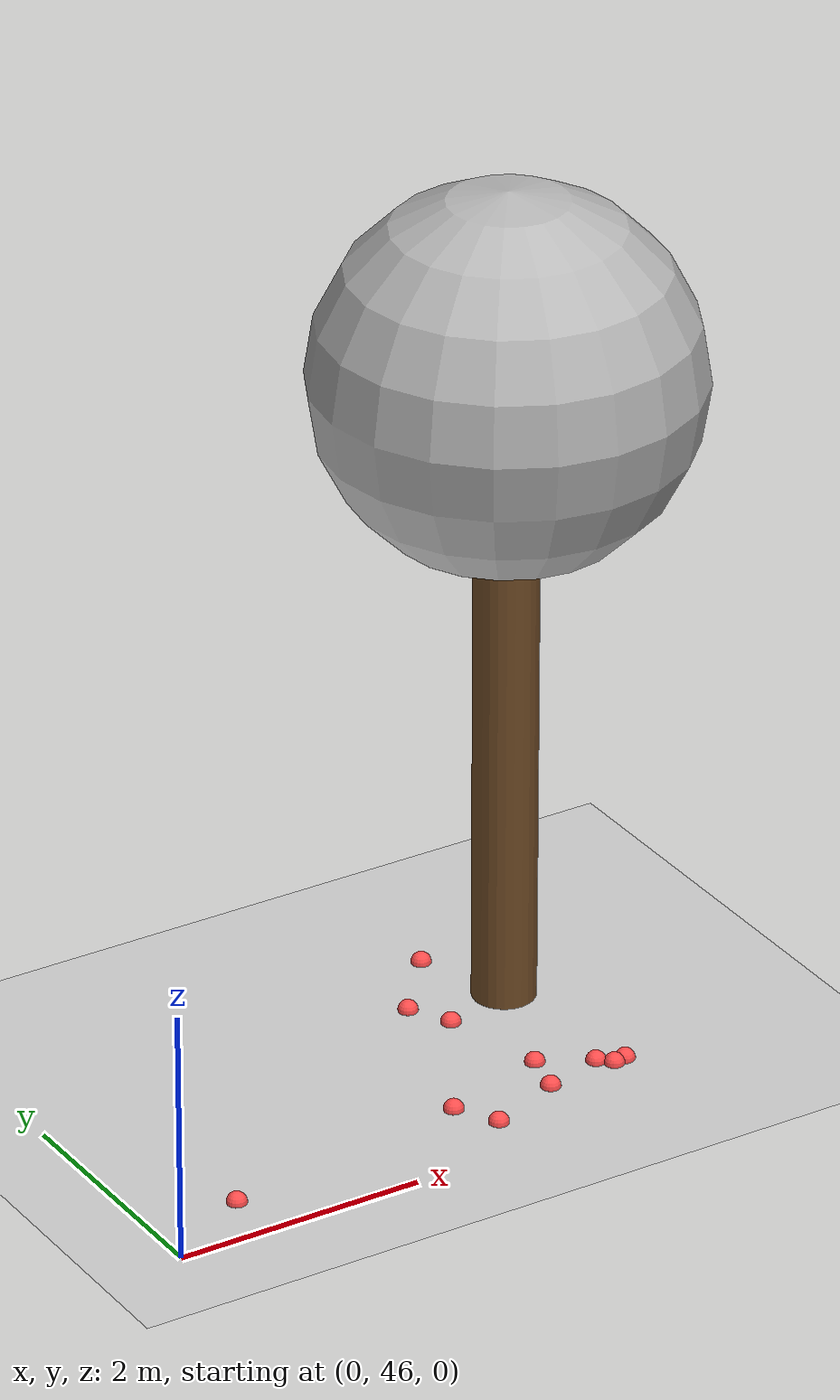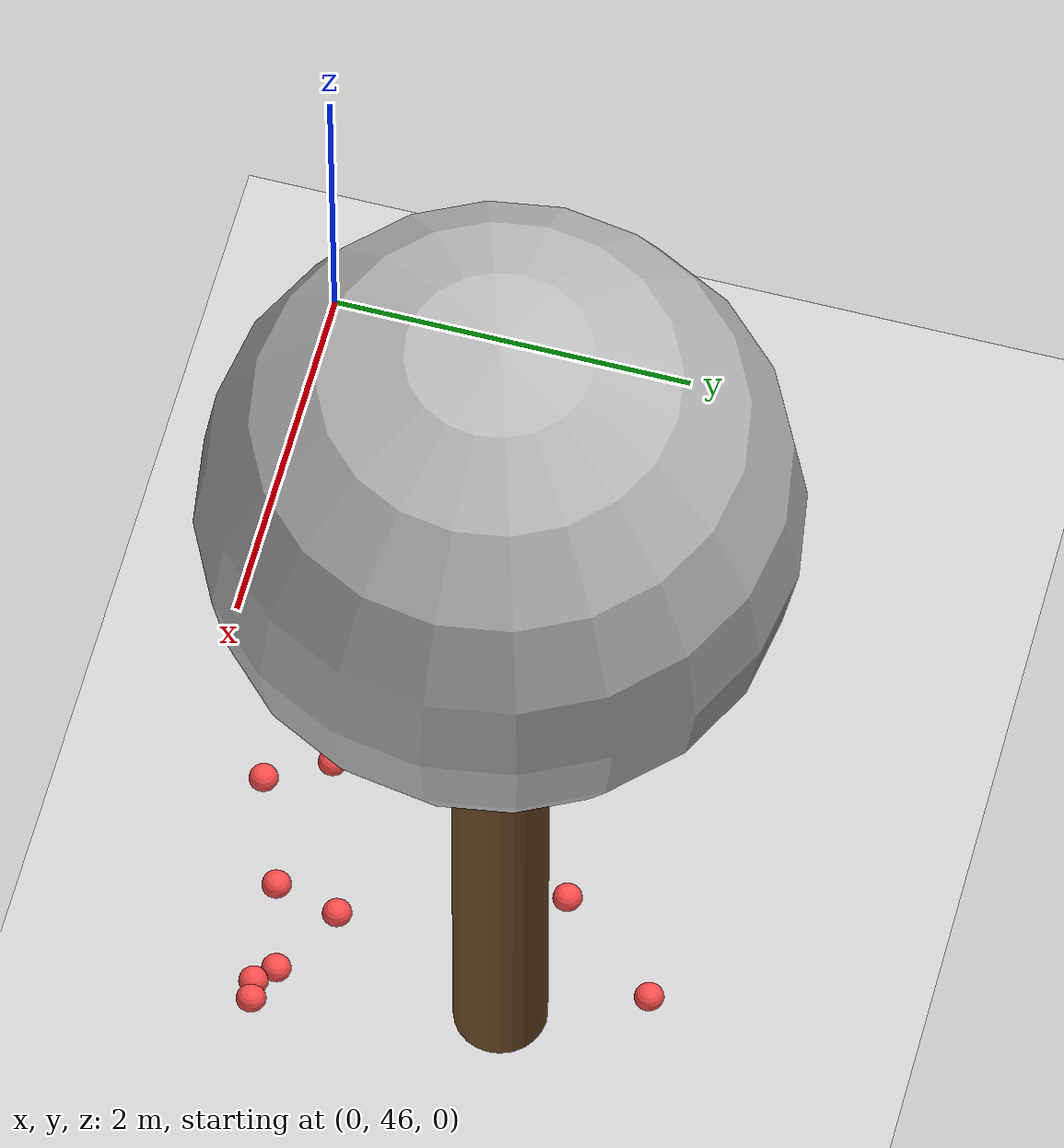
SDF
<sdf version="1.7">
 <world name="default">
  <model name="ground_plane">
   <static>1</static>
   <link name="link">
    <collision name="collision">
     <geometry><plane><normal>0 0 1</normal><size>100 100</size></plane></geometry>
     <surface>
      <contact><collide_bitmask>65535</collide_bitmask></contact>
      <friction><ode><mu>100</mu><mu2>50</mu2></ode></friction>
     </surface>
    </collision>
    <visual name="visual">
     <cast_shadows>0</cast_shadows>
     <geometry><plane><normal>0 0 1</normal><size>100 100</size></plane></geometry>
     <material>
      <script><uri>file://media/materials/scripts/gazebo.material</uri><name>Gazebo/Grey</name></script>
     </material>
    </visual>
   </link>
  </model>
  <model name="tree_simple_1">
   <static>1</static>
   <link name="link">
    <pose>0 0 0.1 0 -0 0</pose>
    <inertial>
     <mass>666</mass>
     <inertia>
      <ixx>0.0861167</ixx>
      <ixy>0</ixy>
      <ixz>0</ixz>
      <iyy>0.0861167</iyy>
      <iyz>0</iyz>
      <izz>0.0861167</izz>
     </inertia>
    </inertial>
    <collision name="collision_trunk">
     <pose>0 0 2 0 -0 0</pose>
     <geometry><cylinder><radius>0.25</radius><length>4</length></cylinder></geometry>
     <surface>
      <contact>
       <poissons_ratio>0.347</poissons_ratio>
       <elastic_modulus>8.8e+09</elastic_modulus>
       <ode><kp>100000</kp><kd>100</kd><max_vel>100</max_vel><min_depth>0.001</min_depth></ode>
      </contact>
      <friction>
       <torsional>
        <coefficient>1</coefficient>
        <use_patch_radius>0</use_patch_radius>
        <surface_radius>0.01</surface_radius>
       </torsional>
      </friction>
     </surface>
    </collision>
    <collision name="collision_treetop">
     <pose>0 0 5.2 0 -0 0</pose>
     <geometry><sphere><radius>1.5</radius></sphere></geometry>
     <surface>
      <contact>
       <poissons_ratio>0.347</poissons_ratio>
       <elastic_modulus>8.8e+09</elastic_modulus>
       <ode><kp>100000</kp><kd>100</kd><max_vel>100</max_vel><min_depth>0.001</min_depth></ode>
      </contact>
      <friction>
       <torsional>
        <coefficient>1</coefficient>
        <use_patch_radius>0</use_patch_radius>
        <surface_radius>0.01</surface_radius>
       </torsional>
      </friction>
     </surface>
    </collision>
    <visual name="trunk">
     <pose>0 0 2 0 -0 0</pose>
     <geometry><cylinder><radius>0.25</radius><length>4</length></cylinder></geometry>
     <material>
      <script>
       <uri>model://tree_simple/scripts</uri>
       <uri>model://tree_simple/materials/textures</uri>
       <name>TreeSimple/Trunk</name>
      </script>
     </material>
    </visual>
    <visual name="treetop">
     <pose>0 0 5.2 0 -0 0</pose>
     <geometry><sphere><radius>1.5</radius></sphere></geometry>
     <material>
      <script>
       <uri>model://tree_simple/scripts</uri>
       <uri>model://tree_simple/materials/textures</uri>
       <name>TreeSimple/Treetop</name>
      </script>
     </material>
    </visual>
   </link>
   <pose>4 48 -0.1 0 -0 0</pose>
  </model>
  <model name="seed_red_0">
   <link name="link">
    <inertial>
     <mass>1</mass>
     <inertia><ixx>0.1</ixx><ixy>0</ixy><ixz>0</ixz><iyy>0.1</iyy><iyz>0</iyz><izz>0.1</izz></inertia>
    </inertial>
    <visual name="visual">
     <geometry><sphere><radius>0.08</radius></sphere></geometry>
     <material>
      <script><name>Gazebo/Grey</name><uri>file://media/materials/scripts/gazebo.material</uri></script>
      <shader type="pixel"><normal_map>__default__</normal_map></shader>
      <ambient>1 0.3 0.3 1</ambient>
      <diffuse>0.7 0.7 0.7 1</diffuse>
      <specular>0.01 0.01 0.01 1</specular>
      <emissive>0 0 0 1</emissive>
     </material>
    </visual>
    <collision name="collision">
     <geometry><sphere><radius>0.0005</radius></sphere></geometry>
     <surface>
      <friction>
       <ode><mu>1</mu><mu2>1</mu2><fdir1>0 0 0</fdir1><slip1>0</slip1><slip2>0</slip2></ode>
       <torsional>
        <coefficient>1</coefficient>
        <patch_radius>0</patch_radius>
        <surface_radius>0</surface_radius>
        <use_patch_radius>1</use_patch_radius>
        <ode><slip>0</slip></ode>
       </torsional>
      </friction>
      <bounce><restitution_coefficient>0</restitution_coefficient><threshold>1e+06</threshold></bounce>
      <contact>
       <collide_without_contact>0</collide_without_contact>
       <collide_without_contact_bitmask>1</collide_without_contact_bitmask>
       <collide_bitmask>1</collide_bitmask>
       <ode>
        <soft_cfm>0</soft_cfm>
        <soft_erp>0.2</soft_erp>
        <kp>1e+13</kp>
        <kd>1</kd>
        <max_vel>0.01</max_vel>
        <min_depth>0</min_depth>
       </ode>
       <bullet>
        <split_impulse>1</split_impulse>
        <split_impulse_penetration_threshold>-0.01</split_impulse_penetration_threshold>
        <soft_cfm>0</soft_cfm>
        <soft_erp>0.2</soft_erp>
        <kp>1e+13</kp>
        <kd>1</kd>
       </bullet>
      </contact>
     </surface>
    </collision>
   </link>
   <static>0</static>
   <pose>3.71634 48.735 0.0005 0 -0 0</pose>
  </model>
  <model name="seed_red_1">
   <link name="link">
    <inertial>
     <mass>1</mass>
     <inertia><ixx>0.1</ixx><ixy>0</ixy><ixz>0</ixz><iyy>0.1</iyy><iyz>0</iyz><izz>0.1</izz></inertia>
    </inertial>
    <visual name="visual">
     <geometry><sphere><radius>0.08</radius></sphere></geometry>
     <material>
      <script><name>Gazebo/Grey</name><uri>file://media/materials/scripts/gazebo.material</uri></script>
      <shader type="pixel"><normal_map>__default__</normal_map></shader>
      <ambient>1 0.3 0.3 1</ambient>
      <diffuse>0.7 0.7 0.7 1</diffuse>
      <specular>0.01 0.01 0.01 1</specular>
      <emissive>0 0 0 1</emissive>
     </material>
    </visual>
    <collision name="collision">
     <geometry><sphere><radius>0.0005</radius></sphere></geometry>
     <surface>
      <friction>
       <ode><mu>1</mu><mu2>1</mu2><fdir1>0 0 0</fdir1><slip1>0</slip1><slip2>0</slip2></ode>
       <torsional>
        <coefficient>1</coefficient>
        <patch_radius>0</patch_radius>
        <surface_radius>0</surface_radius>
        <use_patch_radius>1</use_patch_radius>
        <ode><slip>0</slip></ode>
       </torsional>
      </friction>
      <bounce><restitution_coefficient>0</restitution_coefficient><threshold>1e+06</threshold></bounce>
      <contact>
       <collide_without_contact>0</collide_without_contact>
       <collide_without_contact_bitmask>1</collide_without_contact_bitmask>
       <collide_bitmask>1</collide_bitmask>
       <ode>
        <soft_cfm>0</soft_cfm>
        <soft_erp>0.2</soft_erp>
        <kp>1e+13</kp>
        <kd>1</kd>
        <max_vel>0.01</max_vel>
        <min_depth>0</min_depth>
       </ode>
       <bullet>
        <split_impulse>1</split_impulse>
        <split_impulse_penetration_threshold>-0.01</split_impulse_penetration_threshold>
        <soft_cfm>0</soft_cfm>
        <soft_erp>0.2</soft_erp>
        <kp>1e+13</kp>
        <kd>1</kd>
       </bullet>
      </contact>
     </surface>
    </collision>
   </link>
   <static>0</static>
   <pose>4.0556 46.7916 0.0005 0 -0 0</pose>
  </model>
  <model name="seed_red_2">
   <link name="link">
    <inertial>
     <mass>1</mass>
     <inertia><ixx>0.1</ixx><ixy>0</ixy><ixz>0</ixz><iyy>0.1</iyy><iyz>0</iyz><izz>0.1</izz></inertia>
    </inertial>
    <visual name="visual">
     <geometry><sphere><radius>0.08</radius></sphere></geometry>
     <material>
      <script><name>Gazebo/Grey</name><uri>file://media/materials/scripts/gazebo.material</uri></script>
      <shader type="pixel"><normal_map>__default__</normal_map></shader>
      <ambient>1 0.3 0.3 1</ambient>
      <diffuse>0.7 0.7 0.7 1</diffuse>
      <specular>0.01 0.01 0.01 1</specular>
      <emissive>0 0 0 1</emissive>
     </material>
    </visual>
    <collision name="collision">
     <geometry><sphere><radius>0.0005</radius></sphere></geometry>
     <surface>
      <friction>
       <ode><mu>1</mu><mu2>1</mu2><fdir1>0 0 0</fdir1><slip1>0</slip1><slip2>0</slip2></ode>
       <torsional>
        <coefficient>1</coefficient>
        <patch_radius>0</patch_radius>
        <surface_radius>0</surface_radius>
        <use_patch_radius>1</use_patch_radius>
        <ode><slip>0</slip></ode>
       </torsional>
      </friction>
      <bounce><restitution_coefficient>0</restitution_coefficient><threshold>1e+06</threshold></bounce>
      <contact>
       <collide_without_contact>0</collide_without_contact>
       <collide_without_contact_bitmask>1</collide_without_contact_bitmask>
       <collide_bitmask>1</collide_bitmask>
       <ode>
        <soft_cfm>0</soft_cfm>
        <soft_erp>0.2</soft_erp>
        <kp>1e+13</kp>
        <kd>1</kd>
        <max_vel>0.01</max_vel>
        <min_depth>0</min_depth>
       </ode>
       <bullet>
        <split_impulse>1</split_impulse>
        <split_impulse_penetration_threshold>-0.01</split_impulse_penetration_threshold>
        <soft_cfm>0</soft_cfm>
        <soft_erp>0.2</soft_erp>
        <kp>1e+13</kp>
        <kd>1</kd>
       </bullet>
      </contact>
     </surface>
    </collision>
   </link>
   <static>0</static>
   <pose>4.2634 46.7119 0.0005 0 -0 0</pose>
  </model>
  <model name="seed_red_4">
   <link name="link">
    <inertial>
     <mass>1</mass>
     <inertia><ixx>0.1</ixx><ixy>0</ixy><ixz>0</ixz><iyy>0.1</iyy><iyz>0</iyz><izz>0.1</izz></inertia>
    </inertial>
    <visual name="visual">
     <geometry><sphere><radius>0.08</radius></sphere></geometry>
     <material>
      <script><name>Gazebo/Grey</name><uri>file://media/materials/scripts/gazebo.material</uri></script>
      <shader type="pixel"><normal_map>__default__</normal_map></shader>
      <ambient>1 0.3 0.3 1</ambient>
      <diffuse>0.7 0.7 0.7 1</diffuse>
      <specular>0.01 0.01 0.01 1</specular>
      <emissive>0 0 0 1</emissive>
     </material>
    </visual>
    <collision name="collision">
     <geometry><sphere><radius>0.0005</radius></sphere></geometry>
     <surface>
      <friction>
       <ode><mu>1</mu><mu2>1</mu2><fdir1>0 0 0</fdir1><slip1>0</slip1><slip2>0</slip2></ode>
       <torsional>
        <coefficient>1</coefficient>
        <patch_radius>0</patch_radius>
        <surface_radius>0</surface_radius>
        <use_patch_radius>1</use_patch_radius>
        <ode><slip>0</slip></ode>
       </torsional>
      </friction>
      <bounce><restitution_coefficient>0</restitution_coefficient><threshold>1e+06</threshold></bounce>
      <contact>
       <collide_without_contact>0</collide_without_contact>
       <collide_without_contact_bitmask>1</collide_without_contact_bitmask>
       <collide_bitmask>1</collide_bitmask>
       <ode>
        <soft_cfm>0</soft_cfm>
        <soft_erp>0.2</soft_erp>
        <kp>1e+13</kp>
        <kd>1</kd>
        <max_vel>0.01</max_vel>
        <min_depth>0</min_depth>
       </ode>
       <bullet>
        <split_impulse>1</split_impulse>
        <split_impulse_penetration_threshold>-0.01</split_impulse_penetration_threshold>
        <soft_cfm>0</soft_cfm>
        <soft_erp>0.2</soft_erp>
        <kp>1e+13</kp>
        <kd>1</kd>
       </bullet>
      </contact>
     </surface>
    </collision>
   </link>
   <static>0</static>
   <pose>3.25101 48.168 0.0005 0 -0 0</pose>
  </model>
  <model name="seed_red_5">
   <link name="link">
    <inertial>
     <mass>1</mass>
     <inertia><ixx>0.1</ixx><ixy>0</ixy><ixz>0</ixz><iyy>0.1</iyy><iyz>0</iyz><izz>0.1</izz></inertia>
    </inertial>
    <visual name="visual">
     <geometry><sphere><radius>0.08</radius></sphere></geometry>
     <material>
      <script><name>Gazebo/Grey</name><uri>file://media/materials/scripts/gazebo.material</uri></script>
      <shader type="pixel"><normal_map>__default__</normal_map></shader>
      <ambient>1 0.3 0.3 1</ambient>
      <diffuse>0.7 0.7 0.7 1</diffuse>
      <specular>0.01 0.01 0.01 1</specular>
      <emissive>0 0 0 1</emissive>
     </material>
    </visual>
    <collision name="collision">
     <geometry><sphere><radius>0.0005</radius></sphere></geometry>
     <surface>
      <friction>
       <ode><mu>1</mu><mu2>1</mu2><fdir1>0 0 0</fdir1><slip1>0</slip1><slip2>0</slip2></ode>
       <torsional>
        <coefficient>1</coefficient>
        <patch_radius>0</patch_radius>
        <surface_radius>0</surface_radius>
        <use_patch_radius>1</use_patch_radius>
        <ode><slip>0</slip></ode>
       </torsional>
      </friction>
      <bounce><restitution_coefficient>0</restitution_coefficient><threshold>1e+06</threshold></bounce>
      <contact>
       <collide_without_contact>0</collide_without_contact>
       <collide_without_contact_bitmask>1</collide_without_contact_bitmask>
       <collide_bitmask>1</collide_bitmask>
       <ode>
        <soft_cfm>0</soft_cfm>
        <soft_erp>0.2</soft_erp>
        <kp>1e+13</kp>
        <kd>1</kd>
        <max_vel>0.01</max_vel>
        <min_depth>0</min_depth>
       </ode>
       <bullet>
        <split_impulse>1</split_impulse>
        <split_impulse_penetration_threshold>-0.01</split_impulse_penetration_threshold>
        <soft_cfm>0</soft_cfm>
        <soft_erp>0.2</soft_erp>
        <kp>1e+13</kp>
        <kd>1</kd>
       </bullet>
      </contact>
     </surface>
    </collision>
   </link>
   <static>0</static>
   <pose>4.15861 46.6957 0.0005 0 -0 0</pose>
  </model>
  <model name="seed_red_6">
   <link name="link">
    <inertial>
     <mass>1</mass>
     <inertia><ixx>0.1</ixx><ixy>0</ixy><ixz>0</ixz><iyy>0.1</iyy><iyz>0</iyz><izz>0.1</izz></inertia>
    </inertial>
    <visual name="visual">
     <geometry><sphere><radius>0.08</radius></sphere></geometry>
     <material>
      <script><name>Gazebo/Grey</name><uri>file://media/materials/scripts/gazebo.material</uri></script>
      <shader type="pixel"><normal_map>__default__</normal_map></shader>
      <ambient>1 0.3 0.3 1</ambient>
      <diffuse>0.7 0.7 0.7 1</diffuse>
      <specular>0.01 0.01 0.01 1</specular>
      <emissive>0 0 0 1</emissive>
     </material>
    </visual>
    <collision name="collision">
     <geometry><sphere><radius>0.0005</radius></sphere></geometry>
     <surface>
      <friction>
       <ode><mu>1</mu><mu2>1</mu2><fdir1>0 0 0</fdir1><slip1>0</slip1><slip2>0</slip2></ode>
       <torsional>
        <coefficient>1</coefficient>
        <patch_radius>0</patch_radius>
        <surface_radius>0</surface_radius>
        <use_patch_radius>1</use_patch_radius>
        <ode><slip>0</slip></ode>
       </torsional>
      </friction>
      <bounce><restitution_coefficient>0</restitution_coefficient><threshold>1e+06</threshold></bounce>
      <contact>
       <collide_without_contact>0</collide_without_contact>
       <collide_without_contact_bitmask>1</collide_without_contact_bitmask>
       <collide_bitmask>1</collide_bitmask>
       <ode>
        <soft_cfm>0</soft_cfm>
        <soft_erp>0.2</soft_erp>
        <kp>1e+13</kp>
        <kd>1</kd>
        <max_vel>0.01</max_vel>
        <min_depth>0</min_depth>
       </ode>
       <bullet>
        <split_impulse>1</split_impulse>
        <split_impulse_penetration_threshold>-0.01</split_impulse_penetration_threshold>
        <soft_cfm>0</soft_cfm>
        <soft_erp>0.2</soft_erp>
        <kp>1e+13</kp>
        <kd>1</kd>
       </bullet>
      </contact>
     </surface>
    </collision>
   </link>
   <static>0</static>
   <pose>3.43134 47.8427 0.0005 0 -0 0</pose>
  </model>
  <model name="seed_red_12">
   <link name="link">
    <inertial>
     <mass>1</mass>
     <inertia><ixx>0.1</ixx><ixy>0</ixy><ixz>0</ixz><iyy>0.1</iyy><iyz>0</iyz><izz>0.1</izz></inertia>
    </inertial>
    <visual name="visual">
     <geometry><sphere><radius>0.08</radius></sphere></geometry>
     <material>
      <script><name>Gazebo/Grey</name><uri>file://media/materials/scripts/gazebo.material</uri></script>
      <shader type="pixel"><normal_map>__default__</normal_map></shader>
      <ambient>1 0.3 0.3 1</ambient>
      <diffuse>0.7 0.7 0.7 1</diffuse>
      <specular>0.01 0.01 0.01 1</specular>
      <emissive>0 0 0 1</emissive>
     </material>
    </visual>
    <collision name="collision">
     <geometry><sphere><radius>0.0005</radius></sphere></geometry>
     <surface>
      <friction>
       <ode><mu>1</mu><mu2>1</mu2><fdir1>0 0 0</fdir1><slip1>0</slip1><slip2>0</slip2></ode>
       <torsional>
        <coefficient>1</coefficient>
        <patch_radius>0</patch_radius>
        <surface_radius>0</surface_radius>
        <use_patch_radius>1</use_patch_radius>
        <ode><slip>0</slip></ode>
       </torsional>
      </friction>
      <bounce><restitution_coefficient>0</restitution_coefficient><threshold>1e+06</threshold></bounce>
      <contact>
       <collide_without_contact>0</collide_without_contact>
       <collide_without_contact_bitmask>1</collide_without_contact_bitmask>
       <collide_bitmask>1</collide_bitmask>
       <ode>
        <soft_cfm>0</soft_cfm>
        <soft_erp>0.2</soft_erp>
        <kp>1e+13</kp>
        <kd>1</kd>
        <max_vel>0.01</max_vel>
        <min_depth>0</min_depth>
       </ode>
       <bullet>
        <split_impulse>1</split_impulse>
        <split_impulse_penetration_threshold>-0.01</split_impulse_penetration_threshold>
        <soft_cfm>0</soft_cfm>
        <soft_erp>0.2</soft_erp>
        <kp>1e+13</kp>
        <kd>1</kd>
       </bullet>
      </contact>
     </surface>
    </collision>
   </link>
   <static>0</static>
   <pose>0.738183 46.4622 0.0005 0 -0 0</pose>
  </model>
  <model name="seed_red_19">
   <link name="link">
    <inertial>
     <mass>1</mass>
     <inertia><ixx>0.1</ixx><ixy>0</ixy><ixz>0</ixz><iyy>0.1</iyy><iyz>0</iyz><izz>0.1</izz></inertia>
    </inertial>
    <visual name="visual">
     <geometry><sphere><radius>0.08</radius></sphere></geometry>
     <material>
      <script><name>Gazebo/Grey</name><uri>file://media/materials/scripts/gazebo.material</uri></script>
      <shader type="pixel"><normal_map>__default__</normal_map></shader>
      <ambient>1 0.3 0.3 1</ambient>
      <diffuse>0.7 0.7 0.7 1</diffuse>
      <specular>0.01 0.01 0.01 1</specular>
      <emissive>0 0 0 1</emissive>
     </material>
    </visual>
    <collision name="collision">
     <geometry><sphere><radius>0.0005</radius></sphere></geometry>
     <surface>
      <friction>
       <ode><mu>1</mu><mu2>1</mu2><fdir1>0 0 0</fdir1><slip1>0</slip1><slip2>0</slip2></ode>
       <torsional>
        <coefficient>1</coefficient>
        <patch_radius>0</patch_radius>
        <surface_radius>0</surface_radius>
        <use_patch_radius>1</use_patch_radius>
        <ode><slip>0</slip></ode>
       </torsional>
      </friction>
      <bounce><restitution_coefficient>0</restitution_coefficient><threshold>1e+06</threshold></bounce>
      <contact>
       <collide_without_contact>0</collide_without_contact>
       <collide_without_contact_bitmask>1</collide_without_contact_bitmask>
       <collide_bitmask>1</collide_bitmask>
       <ode>
        <soft_cfm>0</soft_cfm>
        <soft_erp>0.2</soft_erp>
        <kp>1e+13</kp>
        <kd>1</kd>
        <max_vel>0.01</max_vel>
        <min_depth>0</min_depth>
       </ode>
       <bullet>
        <split_impulse>1</split_impulse>
        <split_impulse_penetration_threshold>-0.01</split_impulse_penetration_threshold>
        <soft_cfm>0</soft_cfm>
        <soft_erp>0.2</soft_erp>
        <kp>1e+13</kp>
        <kd>1</kd>
       </bullet>
      </contact>
     </surface>
    </collision>
   </link>
   <static>0</static>
   <pose>3.57065 46.659 0.0005 0 -0 0</pose>
  </model>
  <model name="seed_red_20">
   <link name="link">
    <inertial>
     <mass>1</mass>
     <inertia><ixx>0.1</ixx><ixy>0</ixy><ixz>0</ixz><iyy>0.1</iyy><iyz>0</iyz><izz>0.1</izz></inertia>
    </inertial>
    <visual name="visual">
     <geometry><sphere><radius>0.08</radius></sphere></geometry>
     <material>
      <script><name>Gazebo/Grey</name><uri>file://media/materials/scripts/gazebo.material</uri></script>
      <shader type="pixel"><normal_map>__default__</normal_map></shader>
      <ambient>1 0.3 0.3 1</ambient>
      <diffuse>0.7 0.7 0.7 1</diffuse>
      <specular>0.01 0.01 0.01 1</specular>
      <emissive>0 0 0 1</emissive>
     </material>
    </visual>
    <collision name="collision">
     <geometry><sphere><radius>0.0005</radius></sphere></geometry>
     <surface>
      <friction>
       <ode><mu>1</mu><mu2>1</mu2><fdir1>0 0 0</fdir1><slip1>0</slip1><slip2>0</slip2></ode>
       <torsional>
        <coefficient>1</coefficient>
        <patch_radius>0</patch_radius>
        <surface_radius>0</surface_radius>
        <use_patch_radius>1</use_patch_radius>
        <ode><slip>0</slip></ode>
       </torsional>
      </friction>
      <bounce><restitution_coefficient>0</restitution_coefficient><threshold>1e+06</threshold></bounce>
      <contact>
       <collide_without_contact>0</collide_without_contact>
       <collide_without_contact_bitmask>1</collide_without_contact_bitmask>
       <collide_bitmask>1</collide_bitmask>
       <ode>
        <soft_cfm>0</soft_cfm>
        <soft_erp>0.2</soft_erp>
        <kp>1e+13</kp>
        <kd>1</kd>
        <max_vel>0.01</max_vel>
        <min_depth>0</min_depth>
       </ode>
       <bullet>
        <split_impulse>1</split_impulse>
        <split_impulse_penetration_threshold>-0.01</split_impulse_penetration_threshold>
        <soft_cfm>0</soft_cfm>
        <soft_erp>0.2</soft_erp>
        <kp>1e+13</kp>
        <kd>1</kd>
       </bullet>
      </contact>
     </surface>
    </collision>
   </link>
   <static>0</static>
   <pose>2.96479 46.4199 0.0005 0 -0 0</pose>
  </model>
  <model name="seed_red_21">
   <link name="link">
    <inertial>
     <mass>1</mass>
     <inertia><ixx>0.1</ixx><ixy>0</ixy><ixz>0</ixz><iyy>0.1</iyy><iyz>0</iyz><izz>0.1</izz></inertia>
    </inertial>
    <visual name="visual">
     <geometry><sphere><radius>0.08</radius></sphere></geometry>
     <material>
      <script><name>Gazebo/Grey</name><uri>file://media/materials/scripts/gazebo.material</uri></script>
      <shader type="pixel"><normal_map>__default__</normal_map></shader>
      <ambient>1 0.3 0.3 1</ambient>
      <diffuse>0.7 0.7 0.7 1</diffuse>
      <specular>0.01 0.01 0.01 1</specular>
      <emissive>0 0 0 1</emissive>
     </material>
    </visual>
    <collision name="collision">
     <geometry><sphere><radius>0.0005</radius></sphere></geometry>
     <surface>
      <friction>
       <ode><mu>1</mu><mu2>1</mu2><fdir1>0 0 0</fdir1><slip1>0</slip1><slip2>0</slip2></ode>
       <torsional>
        <coefficient>1</coefficient>
        <patch_radius>0</patch_radius>
        <surface_radius>0</surface_radius>
        <use_patch_radius>1</use_patch_radius>
        <ode><slip>0</slip></ode>
       </torsional>
      </friction>
      <bounce><restitution_coefficient>0</restitution_coefficient><threshold>1e+06</threshold></bounce>
      <contact>
       <collide_without_contact>0</collide_without_contact>
       <collide_without_contact_bitmask>1</collide_without_contact_bitmask>
       <collide_bitmask>1</collide_bitmask>
       <ode>
        <soft_cfm>0</soft_cfm>
        <soft_erp>0.2</soft_erp>
        <kp>1e+13</kp>
        <kd>1</kd>
        <max_vel>0.01</max_vel>
        <min_depth>0</min_depth>
       </ode>
       <bullet>
        <split_impulse>1</split_impulse>
        <split_impulse_penetration_threshold>-0.01</split_impulse_penetration_threshold>
        <soft_cfm>0</soft_cfm>
        <soft_erp>0.2</soft_erp>
        <kp>1e+13</kp>
        <kd>1</kd>
       </bullet>
      </contact>
     </surface>
    </collision>
   </link>
   <static>0</static>
   <pose>2.77691 46.7507 0.0005 0 -0 0</pose>
  </model>
  <model name="seed_red_23">
   <link name="link">
    <inertial>
     <mass>1</mass>
     <inertia><ixx>0.1</ixx><ixy>0</ixy><ixz>0</ixz><iyy>0.1</iyy><iyz>0</iyz><izz>0.1</izz></inertia>
    </inertial>
    <visual name="visual">
     <geometry><sphere><radius>0.08</radius></sphere></geometry>
     <material>
      <script><name>Gazebo/Grey</name><uri>file://media/materials/scripts/gazebo.material</uri></script>
      <shader type="pixel"><normal_map>__default__</normal_map></shader>
      <ambient>1 0.3 0.3 1</ambient>
      <diffuse>0.7 0.7 0.7 1</diffuse>
      <specular>0.01 0.01 0.01 1</specular>
      <emissive>0 0 0 1</emissive>
     </material>
    </visual>
    <collision name="collision">
     <geometry><sphere><radius>0.0005</radius></sphere></geometry>
     <surface>
      <friction>
       <ode><mu>1</mu><mu2>1</mu2><fdir1>0 0 0</fdir1><slip1>0</slip1><slip2>0</slip2></ode>
       <torsional>
        <coefficient>1</coefficient>
        <patch_radius>0</patch_radius>
        <surface_radius>0</surface_radius>
        <use_patch_radius>1</use_patch_radius>
        <ode><slip>0</slip></ode>
       </torsional>
      </friction>
      <bounce><restitution_coefficient>0</restitution_coefficient><threshold>1e+06</threshold></bounce>
      <contact>
       <collide_without_contact>0</collide_without_contact>
       <collide_without_contact_bitmask>1</collide_without_contact_bitmask>
       <collide_bitmask>1</collide_bitmask>
       <ode>
        <soft_cfm>0</soft_cfm>
        <soft_erp>0.2</soft_erp>
        <kp>1e+13</kp>
        <kd>1</kd>
        <max_vel>0.01</max_vel>
        <min_depth>0</min_depth>
       </ode>
       <bullet>
        <split_impulse>1</split_impulse>
        <split_impulse_penetration_threshold>-0.01</split_impulse_penetration_threshold>
        <soft_cfm>0</soft_cfm>
        <soft_erp>0.2</soft_erp>
        <kp>1e+13</kp>
        <kd>1</kd>
       </bullet>
      </contact>
     </surface>
    </collision>
   </link>
   <static>0</static>
   <pose>3.65401 47.0138 0.0005 0 -0 0</pose>
  </model>
 </world>
</sdf>
